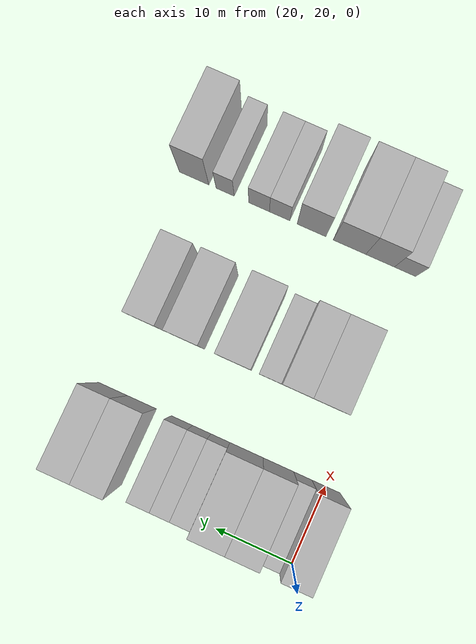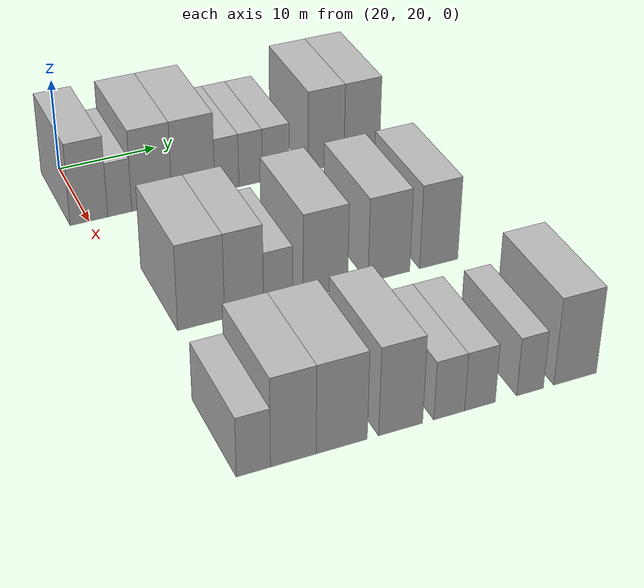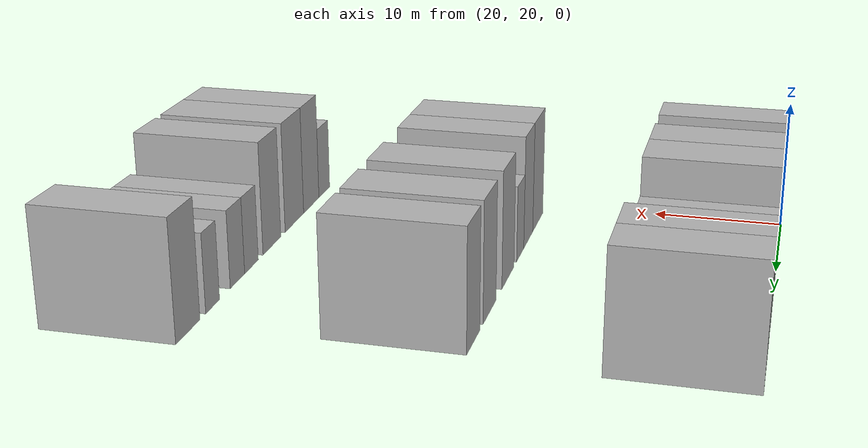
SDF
<sdf version="1.6">
 <world name="default">
  <model name="building_69">
   <static>1</static>
   <pose>25.0000 19.9819 0 0.000000 0.000000 0.000000</pose>
   <link name="link">
    <pose>0 0 4.50 0 0 0</pose>
    <collision name="collision"><geometry><box><size>10.0000 3.6989 9.0000</size></box></geometry></collision>
    <visual name="visual">
     <cast_shadows>0</cast_shadows>
     <geometry><box><size>10.0000 3.6989 9.0000</size></box></geometry>
     <material>
      <script>
       <uri>model://HANNAS_wall/materials/scripts</uri>
       <uri>model://HANNAS_wall/materials/textures</uri>
       <name>vrc/HANNAS_wall</name>
      </script>
     </material>
    </visual>
   </link>
  </model>
  <model name="building_70">
   <static>1</static>
   <pose>25.0000 23.0336 0 0.000000 0.000000 0.000000</pose>
   <link name="link">
    <pose>0 0 3.00 0 0 0</pose>
    <collision name="collision"><geometry><box><size>10.0000 2.4045 6.0000</size></box></geometry></collision>
    <visual name="visual">
     <cast_shadows>0</cast_shadows>
     <geometry><box><size>10.0000 2.4045 6.0000</size></box></geometry>
     <material>
      <script>
       <uri>model://HANNAS_wall/materials/scripts</uri>
       <uri>model://HANNAS_wall/materials/textures</uri>
       <name>vrc/HANNAS_wall</name>
      </script>
     </material>
    </visual>
   </link>
  </model>
  <model name="building_71">
   <static>1</static>
   <pose>25.0000 26.2695 0 0.000000 0.000000 0.000000</pose>
   <link name="link">
    <pose>0 0 4.50 0 0 0</pose>
    <collision name="collision"><geometry><box><size>10.0000 4.0673 9.0000</size></box></geometry></collision>
    <visual name="visual">
     <cast_shadows>0</cast_shadows>
     <geometry><box><size>10.0000 4.0673 9.0000</size></box></geometry>
     <material>
      <script>
       <uri>model://HANNAS_wall/materials/scripts</uri>
       <uri>model://HANNAS_wall/materials/textures</uri>
       <name>vrc/HANNAS_wall</name>
      </script>
     </material>
    </visual>
   </link>
  </model>
  <model name="building_72">
   <static>1</static>
   <pose>25.0000 30.5044 0 0.000000 0.000000 0.000000</pose>
   <link name="link">
    <pose>0 0 4.50 0 0 0</pose>
    <collision name="collision"><geometry><box><size>10.0000 4.4026 9.0000</size></box></geometry></collision>
    <visual name="visual">
     <cast_shadows>0</cast_shadows>
     <geometry><box><size>10.0000 4.4026 9.0000</size></box></geometry>
     <material>
      <script>
       <uri>model://HANNAS_wall/materials/scripts</uri>
       <uri>model://HANNAS_wall/materials/textures</uri>
       <name>vrc/HANNAS_wall</name>
      </script>
     </material>
    </visual>
   </link>
  </model>
  <model name="building_73">
   <static>1</static>
   <pose>25.0000 33.9564 0 0.000000 0.000000 0.000000</pose>
   <link name="link">
    <pose>0 0 3.00 0 0 0</pose>
    <collision name="collision"><geometry><box><size>10.0000 2.5014 6.0000</size></box></geometry></collision>
    <visual name="visual">
     <cast_shadows>0</cast_shadows>
     <geometry><box><size>10.0000 2.5014 6.0000</size></box></geometry>
     <material>
      <script>
       <uri>model://HANNAS_wall/materials/scripts</uri>
       <uri>model://HANNAS_wall/materials/textures</uri>
       <name>vrc/HANNAS_wall</name>
      </script>
     </material>
    </visual>
   </link>
  </model>
  <model name="building_74">
   <static>1</static>
   <pose>25.0000 36.4383 0 0.000000 0.000000 0.000000</pose>
   <link name="link">
    <pose>0 0 3.00 0 0 0</pose>
    <collision name="collision"><geometry><box><size>10.0000 2.4623 6.0000</size></box></geometry></collision>
    <visual name="visual">
     <cast_shadows>0</cast_shadows>
     <geometry><box><size>10.0000 2.4623 6.0000</size></box></geometry>
     <material>
      <script>
       <uri>model://HANNAS_wall/materials/scripts</uri>
       <uri>model://HANNAS_wall/materials/textures</uri>
       <name>vrc/HANNAS_wall</name>
      </script>
     </material>
    </visual>
   </link>
  </model>
  <model name="building_75">
   <static>1</static>
   <pose>25.0000 39.0968 0 0.000000 0.000000 0.000000</pose>
   <link name="link">
    <pose>0 0 3.00 0 0 0</pose>
    <collision name="collision"><geometry><box><size>10.0000 2.8547 6.0000</size></box></geometry></collision>
    <visual name="visual">
     <cast_shadows>0</cast_shadows>
     <geometry><box><size>10.0000 2.8547 6.0000</size></box></geometry>
     <material>
      <script>
       <uri>model://HANNAS_wall/materials/scripts</uri>
       <uri>model://HANNAS_wall/materials/textures</uri>
       <name>vrc/HANNAS_wall</name>
      </script>
     </material>
    </visual>
   </link>
  </model>
  <model name="building_76">
   <static>1</static>
   <pose>25.0000 44.4798 0 0.000000 0.000000 0.000000</pose>
   <link name="link">
    <pose>0 0 4.50 0 0 0</pose>
    <collision name="collision"><geometry><box><size>10.0000 3.9114 9.0000</size></box></geometry></collision>
    <visual name="visual">
     <cast_shadows>0</cast_shadows>
     <geometry><box><size>10.0000 3.9114 9.0000</size></box></geometry>
     <material>
      <script>
       <uri>model://HANNAS_wall/materials/scripts</uri>
       <uri>model://HANNAS_wall/materials/textures</uri>
       <name>vrc/HANNAS_wall</name>
      </script>
     </material>
    </visual>
   </link>
  </model>
  <model name="building_77">
   <static>1</static>
   <pose>25.0000 48.3891 0 0.000000 0.000000 0.000000</pose>
   <link name="link">
    <pose>0 0 4.50 0 0 0</pose>
    <collision name="collision"><geometry><box><size>10.0000 3.9073 9.0000</size></box></geometry></collision>
    <visual name="visual">
     <cast_shadows>0</cast_shadows>
     <geometry><box><size>10.0000 3.9073 9.0000</size></box></geometry>
     <material>
      <script>
       <uri>model://HANNAS_wall/materials/scripts</uri>
       <uri>model://HANNAS_wall/materials/textures</uri>
       <name>vrc/HANNAS_wall</name>
      </script>
     </material>
    </visual>
   </link>
  </model>
  <model name="building_188">
   <static>1</static>
   <pose>44.0000 24.2760 0 0.000000 0.000000 0.000000</pose>
   <link name="link">
    <pose>0 0 4.50 0 0 0</pose>
    <collision name="collision"><geometry><box><size>10.0000 4.3407 9.0000</size></box></geometry></collision>
    <visual name="visual">
     <cast_shadows>0</cast_shadows>
     <geometry><box><size>10.0000 4.3407 9.0000</size></box></geometry>
     <material>
      <script>
       <uri>model://HANNAS_wall/materials/scripts</uri>
       <uri>model://HANNAS_wall/materials/textures</uri>
       <name>vrc/HANNAS_wall</name>
      </script>
     </material>
    </visual>
   </link>
  </model>
  <model name="building_189">
   <static>1</static>
   <pose>44.0000 28.2783 0 0.000000 0.000000 0.000000</pose>
   <link name="link">
    <pose>0 0 4.50 0 0 0</pose>
    <collision name="collision"><geometry><box><size>10.0000 3.6640 9.0000</size></box></geometry></collision>
    <visual name="visual">
     <cast_shadows>0</cast_shadows>
     <geometry><box><size>10.0000 3.6640 9.0000</size></box></geometry>
     <material>
      <script>
       <uri>model://HANNAS_wall/materials/scripts</uri>
       <uri>model://HANNAS_wall/materials/textures</uri>
       <name>vrc/HANNAS_wall</name>
      </script>
     </material>
    </visual>
   </link>
  </model>
  <model name="building_190">
   <static>1</static>
   <pose>44.0000 31.4995 0 0.000000 0.000000 0.000000</pose>
   <link name="link">
    <pose>0 0 3.00 0 0 0</pose>
    <collision name="collision"><geometry><box><size>10.0000 2.7785 6.0000</size></box></geometry></collision>
    <visual name="visual">
     <cast_shadows>0</cast_shadows>
     <geometry><box><size>10.0000 2.7785 6.0000</size></box></geometry>
     <material>
      <script>
       <uri>model://HANNAS_wall/materials/scripts</uri>
       <uri>model://HANNAS_wall/materials/textures</uri>
       <name>vrc/HANNAS_wall</name>
      </script>
     </material>
    </visual>
   </link>
  </model>
  <model name="building_191">
   <static>1</static>
   <pose>44.0000 36.0574 0 0.000000 0.000000 0.000000</pose>
   <link name="link">
    <pose>0 0 4.50 0 0 0</pose>
    <collision name="collision"><geometry><box><size>10.0000 4.3373 9.0000</size></box></geometry></collision>
    <visual name="visual">
     <cast_shadows>0</cast_shadows>
     <geometry><box><size>10.0000 4.3373 9.0000</size></box></geometry>
     <material>
      <script>
       <uri>model://HANNAS_wall/materials/scripts</uri>
       <uri>model://HANNAS_wall/materials/textures</uri>
       <name>vrc/HANNAS_wall</name>
      </script>
     </material>
    </visual>
   </link>
  </model>
  <model name="building_192">
   <static>1</static>
   <pose>44.0000 42.3179 0 0.000000 0.000000 0.000000</pose>
   <link name="link">
    <pose>0 0 4.50 0 0 0</pose>
    <collision name="collision"><geometry><box><size>10.0000 4.1837 9.0000</size></box></geometry></collision>
    <visual name="visual">
     <cast_shadows>0</cast_shadows>
     <geometry><box><size>10.0000 4.1837 9.0000</size></box></geometry>
     <material>
      <script>
       <uri>model://HANNAS_wall/materials/scripts</uri>
       <uri>model://HANNAS_wall/materials/textures</uri>
       <name>vrc/HANNAS_wall</name>
      </script>
     </material>
    </visual>
   </link>
  </model>
  <model name="building_193">
   <static>1</static>
   <pose>44.0000 47.3518 0 0.000000 0.000000 0.000000</pose>
   <link name="link">
    <pose>0 0 4.50 0 0 0</pose>
    <collision name="collision"><geometry><box><size>10.0000 3.8842 9.0000</size></box></geometry></collision>
    <visual name="visual">
     <cast_shadows>0</cast_shadows>
     <geometry><box><size>10.0000 3.8842 9.0000</size></box></geometry>
     <material>
      <script>
       <uri>model://HANNAS_wall/materials/scripts</uri>
       <uri>model://HANNAS_wall/materials/textures</uri>
       <name>vrc/HANNAS_wall</name>
      </script>
     </material>
    </visual>
   </link>
  </model>
  <model name="building_309">
   <static>1</static>
   <pose>63.0000 21.5682 0 0.000000 0.000000 0.000000</pose>
   <link name="link">
    <pose>0 0 3.00 0 0 0</pose>
    <collision name="collision"><geometry><box><size>10.0000 2.8722 6.0000</size></box></geometry></collision>
    <visual name="visual">
     <cast_shadows>0</cast_shadows>
     <geometry><box><size>10.0000 2.8722 6.0000</size></box></geometry>
     <material>
      <script>
       <uri>model://HANNAS_wall/materials/scripts</uri>
       <uri>model://HANNAS_wall/materials/textures</uri>
       <name>vrc/HANNAS_wall</name>
      </script>
     </material>
    </visual>
   </link>
  </model>
  <model name="building_310">
   <static>1</static>
   <pose>63.0000 24.9479 0 0.000000 0.000000 0.000000</pose>
   <link name="link">
    <pose>0 0 4.50 0 0 0</pose>
    <collision name="collision"><geometry><box><size>10.0000 3.8871 9.0000</size></box></geometry></collision>
    <visual name="visual">
     <cast_shadows>0</cast_shadows>
     <geometry><box><size>10.0000 3.8871 9.0000</size></box></geometry>
     <material>
      <script>
       <uri>model://HANNAS_wall/materials/scripts</uri>
       <uri>model://HANNAS_wall/materials/textures</uri>
       <name>vrc/HANNAS_wall</name>
      </script>
     </material>
    </visual>
   </link>
  </model>
  <model name="building_311">
   <static>1</static>
   <pose>63.0000 29.1066 0 0.000000 0.000000 0.000000</pose>
   <link name="link">
    <pose>0 0 4.50 0 0 0</pose>
    <collision name="collision"><geometry><box><size>10.0000 4.4303 9.0000</size></box></geometry></collision>
    <visual name="visual">
     <cast_shadows>0</cast_shadows>
     <geometry><box><size>10.0000 4.4303 9.0000</size></box></geometry>
     <material>
      <script>
       <uri>model://HANNAS_wall/materials/scripts</uri>
       <uri>model://HANNAS_wall/materials/textures</uri>
       <name>vrc/HANNAS_wall</name>
      </script>
     </material>
    </visual>
   </link>
  </model>
  <model name="building_312">
   <static>1</static>
   <pose>63.0000 34.2825 0 0.000000 0.000000 0.000000</pose>
   <link name="link">
    <pose>0 0 4.50 0 0 0</pose>
    <collision name="collision"><geometry><box><size>10.0000 3.9216 9.0000</size></box></geometry></collision>
    <visual name="visual">
     <cast_shadows>0</cast_shadows>
     <geometry><box><size>10.0000 3.9216 9.0000</size></box></geometry>
     <material>
      <script>
       <uri>model://HANNAS_wall/materials/scripts</uri>
       <uri>model://HANNAS_wall/materials/textures</uri>
       <name>vrc/HANNAS_wall</name>
      </script>
     </material>
    </visual>
   </link>
  </model>
  <model name="building_313">
   <static>1</static>
   <pose>63.0000 38.6428 0 0.000000 0.000000 0.000000</pose>
   <link name="link">
    <pose>0 0 3.00 0 0 0</pose>
    <collision name="collision"><geometry><box><size>10.0000 2.7990 6.0000</size></box></geometry></collision>
    <visual name="visual">
     <cast_shadows>0</cast_shadows>
     <geometry><box><size>10.0000 2.7990 6.0000</size></box></geometry>
     <material>
      <script>
       <uri>model://HANNAS_wall/materials/scripts</uri>
       <uri>model://HANNAS_wall/materials/textures</uri>
       <name>vrc/HANNAS_wall</name>
      </script>
     </material>
    </visual>
   </link>
  </model>
  <model name="building_314">
   <static>1</static>
   <pose>63.0000 41.4582 0 0.000000 0.000000 0.000000</pose>
   <link name="link">
    <pose>0 0 3.00 0 0 0</pose>
    <collision name="collision"><geometry><box><size>10.0000 2.8318 6.0000</size></box></geometry></collision>
    <visual name="visual">
     <cast_shadows>0</cast_shadows>
     <geometry><box><size>10.0000 2.8318 6.0000</size></box></geometry>
     <material>
      <script>
       <uri>model://HANNAS_wall/materials/scripts</uri>
       <uri>model://HANNAS_wall/materials/textures</uri>
       <name>vrc/HANNAS_wall</name>
      </script>
     </material>
    </visual>
   </link>
  </model>
  <model name="building_315">
   <static>1</static>
   <pose>63.0000 46.1259 0 0.000000 0.000000 0.000000</pose>
   <link name="link">
    <pose>0 0 3.00 0 0 0</pose>
    <collision name="collision"><geometry><box><size>10.0000 2.5035 6.0000</size></box></geometry></collision>
    <visual name="visual">
     <cast_shadows>0</cast_shadows>
     <geometry><box><size>10.0000 2.5035 6.0000</size></box></geometry>
     <material>
      <script>
       <uri>model://HANNAS_wall/materials/scripts</uri>
       <uri>model://HANNAS_wall/materials/textures</uri>
       <name>vrc/HANNAS_wall</name>
      </script>
     </material>
    </visual>
   </link>
  </model>
  <model name="building_316">
   <static>1</static>
   <pose>63.0000 50.4107 0 0.000000 0.000000 0.000000</pose>
   <link name="link">
    <pose>0 0 4.50 0 0 0</pose>
    <collision name="collision"><geometry><box><size>10.0000 4.0661 9.0000</size></box></geometry></collision>
    <visual name="visual">
     <cast_shadows>0</cast_shadows>
     <geometry><box><size>10.0000 4.0661 9.0000</size></box></geometry>
     <material>
      <script>
       <uri>model://HANNAS_wall/materials/scripts</uri>
       <uri>model://HANNAS_wall/materials/textures</uri>
       <name>vrc/HANNAS_wall</name>
      </script>
     </material>
    </visual>
   </link>
  </model>
 </world>
</sdf>
